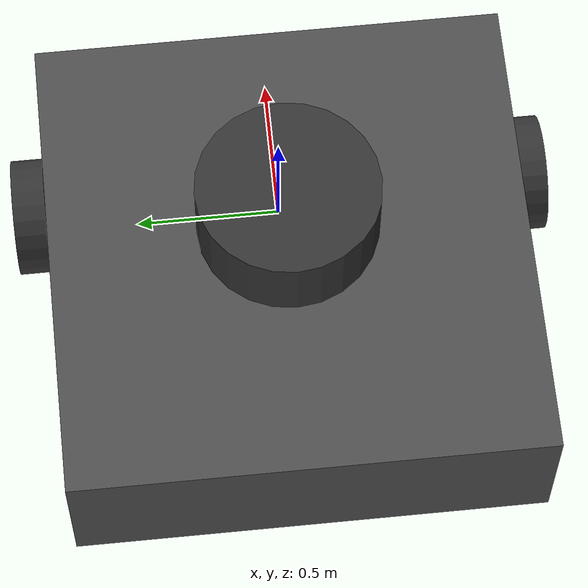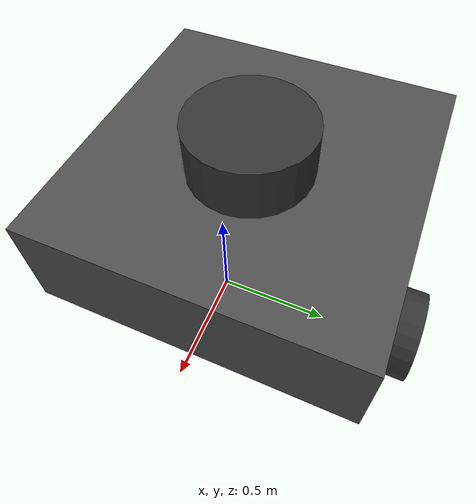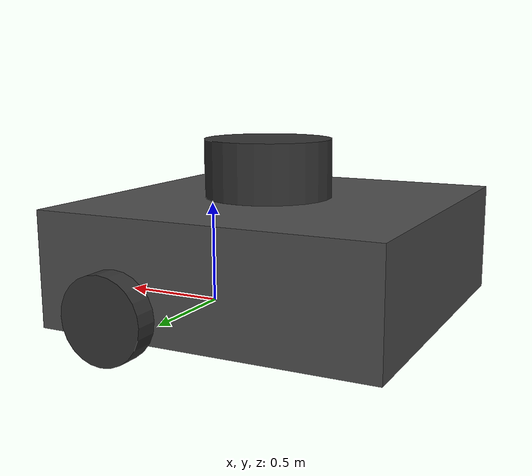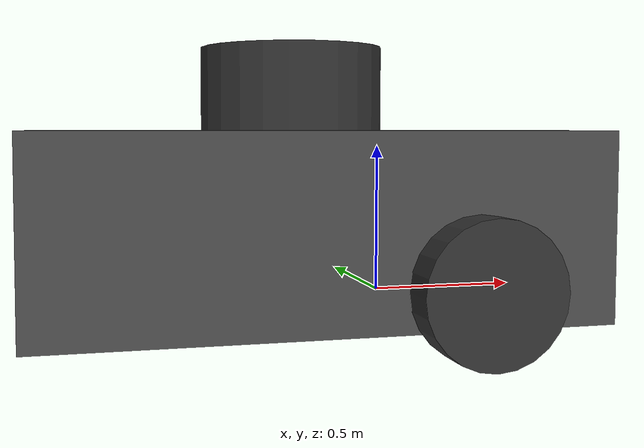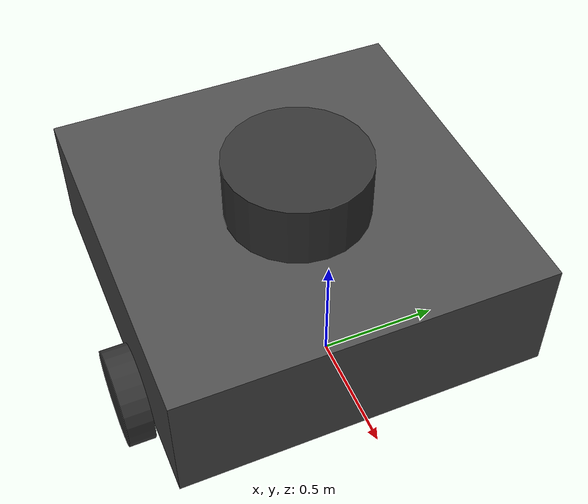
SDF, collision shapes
<sdf version="1.5">
  <model name="turtlebot3_waffle_pi">
  <pose>0.000000 0.000000 0.000000 0.0 0.0 0.0</pose>

    <link name="base_footprint" />

    <link name="base_link">

      <inertial>
        <pose>-0.384000 0.000000 0.288000 0 0 0</pose>
        <inertia>
          <ixx>4.2111447e-02</ixx>
          <ixy>0</ixy>
          <ixz>0</ixz>
          <iyy>4.2111447e-02</iyy>
          <iyz>0</iyz>
          <izz>7.5254874e-02</izz>
        </inertia>
        <mass>1.3729096e+00</mass>
      </inertial>

      <collision name="base_collision">
        <pose>-0.384000 0.000000 0.288000 0 0 0</pose>
        <geometry>
          <box>
            <size>1.590000 1.590000 0.534000</size>
          </box>
        </geometry>
      </collision>

      <visual name="base_visual">
        <pose>-0.384000 0.000000 0.000000 0 0 0</pose>
        <geometry>
          <mesh>
            <uri>model://turtlebot3_common/meshes/bases/waffle_pi_base.stl</uri>
            <scale>0.006000 0.006000 0.006000</scale>
          </mesh>
        </geometry>
        <material>
          <ambient>0.3 0.3 0.3 1.0</ambient>
          <diffuse>0.3 0.3 0.3 1.0</diffuse>
        </material>
      </visual>
    </link>

    <link name="imu_link">
      <sensor name="tb3_imu" type="imu">
        <always_on>true</always_on>
        <update_rate>200</update_rate>
        <imu>
          <angular_velocity>
            <x>
              <noise type="gaussian">
                <mean>0.0</mean>
                <stddev>2e-4</stddev>
              </noise>
            </x>
            <y>
              <noise type="gaussian">
                <mean>0.0</mean>
                <stddev>2e-4</stddev>
              </noise>
            </y>
            <z>
              <noise type="gaussian">
                <mean>0.0</mean>
                <stddev>2e-4</stddev>
              </noise>
            </z>
          </angular_velocity>
          <linear_acceleration>
            <x>
              <noise type="gaussian">
                <mean>0.0</mean>
                <stddev>1.7e-2</stddev>
              </noise>
            </x>
            <y>
              <noise type="gaussian">
                <mean>0.0</mean>
                <stddev>1.7e-2</stddev>
              </noise>
            </y>
            <z>
              <noise type="gaussian">
                <mean>0.0</mean>
                <stddev>1.7e-2</stddev>
              </noise>
            </z>
          </linear_acceleration>
        </imu>
        <plugin name="turtlebot3_imu" filename="libgazebo_ros_imu_sensor.so">
          <ros>

            <remapping>~/out:=imu</remapping>
          </ros>
        </plugin>
      </sensor>
    </link>

    <link name="base_scan">
      <inertial>
        <pose>-0.312000 0.000000 0.666000 0 0 0</pose>
        <inertia>
          <ixx>0.001</ixx>
          <ixy>0.000</ixy>
          <ixz>0.000</ixz>
          <iyy>0.001</iyy>
          <iyz>0.000</iyz>
          <izz>0.001</izz>
        </inertia>
        <mass>0.114</mass>
      </inertial>

      <collision name="lidar_sensor_collision">
        <pose>-0.312000 0.000000 0.666000 0 0 0</pose>
        <geometry>
          <cylinder>
            <radius>0.304800</radius>
            <length>0.330000</length>
          </cylinder>
        </geometry>
      </collision>

      <visual name="lidar_sensor_visual">
        <pose>-0.384000 0.000000 0.726000 0 0 0</pose>
        <geometry>
          <mesh>
            <uri>model://turtlebot3_common/meshes/sensors/lds.stl</uri>
            <scale>0.006000 0.006000 0.006000</scale>
          </mesh>
        </geometry>
        <material>
          <ambient>0.2 0.2 0.2 1.0</ambient>
          <diffuse>0.2 0.2 0.2 1.0</diffuse>
        </material>
      </visual>

      <sensor name="hls_lfcd_lds" type="ray">
        <always_on>true</always_on>
        <visualize>true</visualize>
        <pose>-0.384000 0.000000 0.726000 0 0 0</pose>
        <update_rate>5</update_rate>
        <ray>
          <scan>
            <horizontal>
              <samples>360</samples>
              <resolution>1.000000</resolution>
              <min_angle>0.000000</min_angle>
              <max_angle>6.280000</max_angle>
            </horizontal>
          </scan>
          <range>
            <min>0.120000</min>
            <max>3.5</max>
            <resolution>0.015000</resolution>
          </range>
          <noise>
            <type>gaussian</type>
            <mean>0.0</mean>
            <stddev>0.01</stddev>
          </noise>
        </ray>
        <plugin name="turtlebot3_laserscan" filename="libgazebo_ros_ray_sensor.so">
          <ros>

            <remapping>~/out:=scan</remapping>
          </ros>
          <output_type>sensor_msgs/LaserScan</output_type>
          <frame_name>base_scan</frame_name>
        </plugin>
      </sensor>
    </link>

    <link name="wheel_left_link">

      <inertial>
        <pose>0.000000 0.864000 0.138000 -1.57 0 0</pose>
        <inertia>
          <ixx>1.8158194e-03</ixx>
          <ixy>-9.3392e-12</ixy>
          <ixz>1.04909e-11</ixz>
          <iyy>3.2922126e-03</iyy>
          <iyz>5.75694e-11</iyz>
          <izz>1.8158194e-03</izz>
        </inertia>
        <mass>2.8498940e-02</mass>
      </inertial>

      <collision name="wheel_left_collision">
        <pose>0.000000 0.864000 0.138000 -1.57 0 0</pose>
        <geometry>
          <cylinder>
            <radius>0.198000</radius>
            <length>0.108000</length>
          </cylinder>
        </geometry>
        <surface>

          <friction>
            <ode>
              <mu>100000</mu>
              <mu2>100000</mu2>
              <fdir1>0 0 0</fdir1>
              <slip1>0.0</slip1>
              <slip2>0.0</slip2>
            </ode>
          </friction>
          <contact>
            <ode>
              <soft_cfm>0</soft_cfm>
              <soft_erp>0.2</soft_erp>
              <kp>1e+5</kp>
              <kd>1</kd>
              <max_vel>0.01</max_vel>
              <min_depth>0.001</min_depth>
            </ode>
          </contact>
        </surface>
      </collision>

      <visual name="wheel_left_visual">
        <pose>0.000000 0.864000 0.138000 0 0 0</pose>
        <geometry>
          <mesh>
            <uri>model://turtlebot3_common/meshes/wheels/right_tire.stl</uri>
            <scale>0.006000 0.006000 0.006000</scale>
          </mesh>
        </geometry>
        <material>
          <ambient>0.2 0.2 0.2 1.0</ambient>
          <diffuse>0.2 0.2 0.2 1.0</diffuse>
        </material>
      </visual>
    </link>

    <link name="wheel_right_link">

      <inertial>
        <pose>0.000000 -0.864000 0.138000 -1.57 0 0</pose>
        <inertia>
          <ixx>1.8158194e-03</ixx>
          <ixy>-9.3392e-12</ixy>
          <ixz>1.04909e-11</ixz>
          <iyy>3.2922126e-03</iyy>
          <iyz>5.75694e-11</iyz>
          <izz>1.8158194e-03</izz>
        </inertia>
        <mass>2.8498940e-02</mass>
      </inertial>

      <collision name="wheel_right_collision">
        <pose>0.000000 -0.864000 0.138000 -1.57 0 0</pose>
        <geometry>
          <cylinder>
            <radius>0.198000</radius>
            <length>0.108000</length>
          </cylinder>
        </geometry>
        <surface>

          <friction>
            <ode>
              <mu>100000</mu>
              <mu2>100000</mu2>
              <fdir1>0 0 0</fdir1>
              <slip1>0.0</slip1>
              <slip2>0.0</slip2>
            </ode>
          </friction>
          <contact>
            <ode>
              <soft_cfm>0</soft_cfm>
              <soft_erp>0.2</soft_erp>
              <kp>1e+5</kp>
              <kd>1</kd>
              <max_vel>0.01</max_vel>
              <min_depth>0.001</min_depth>
            </ode>
          </contact>
        </surface>
      </collision>

      <visual name="wheel_right_visual">
        <pose>0.000000 -0.864000 0.138000 0 0 0</pose>
        <geometry>
          <mesh>
            <uri>model://turtlebot3_common/meshes/wheels/left_tire.stl</uri>
            <scale>0.006000 0.006000 0.006000</scale>
          </mesh>
        </geometry>
        <material>
          <ambient>0.2 0.2 0.2 1.0</ambient>
          <diffuse>0.2 0.2 0.2 1.0</diffuse>
        </material>
      </visual>
    </link>

    <link name="caster_back_right_link">
      <pose>-1.062000 -0.384000 -0.024000 -1.57 0 0</pose>
      <inertial>
        <mass>0.001</mass>
        <inertia>
          <ixx>0.00001</ixx>
          <ixy>0.000</ixy>
          <ixz>0.000</ixz>
          <iyy>0.00001</iyy>
          <iyz>0.000</iyz>
          <izz>0.00001</izz>
        </inertia>
      </inertial>
      <collision name="collision">
        <geometry>
          <sphere>
            <radius>0.030000</radius>
          </sphere>
        </geometry>
        <surface>
          <contact>
            <ode>
              <soft_cfm>0</soft_cfm>
              <soft_erp>0.2</soft_erp>
              <kp>1e+5</kp>
              <kd>1</kd>
              <max_vel>0.01</max_vel>
              <min_depth>0.001</min_depth>
            </ode>
          </contact>
        </surface>
      </collision>
    </link>

    <link name="caster_back_left_link">
      <pose>-1.062000 0.384000 -0.024000 -1.57 0 0</pose>
      <inertial>
        <mass>0.001</mass>
        <inertia>
          <ixx>0.00001</ixx>
          <ixy>0.000</ixy>
          <ixz>0.000</ixz>
          <iyy>0.00001</iyy>
          <iyz>0.000</iyz>
          <izz>0.00001</izz>
        </inertia>
      </inertial>
      <collision name="collision">
        <geometry>
          <sphere>
            <radius>0.030000</radius>
          </sphere>
        </geometry>
        <surface>
          <contact>
            <ode>
              <soft_cfm>0</soft_cfm>
              <soft_erp>0.2</soft_erp>
              <kp>1e+5</kp>
              <kd>1</kd>
              <max_vel>0.01</max_vel>
              <min_depth>0.001</min_depth>
            </ode>
          </contact>
        </surface>
      </collision>
    </link>

    <link name="camera_link" />

    <link name="camera_rgb_optical_frame">
      <inertial>
        <pose>0.456000 0.000000 0.558000 0 0 0</pose>
        <inertia>
          <ixx>0.001</ixx>
          <ixy>0.000</ixy>
          <ixz>0.000</ixz>
          <iyy>0.001</iyy>
          <iyz>0.000</iyz>
          <izz>0.001</izz>
        </inertia>
        <mass>0.035</mass>
      </inertial>

      <pose>0.456000 0.000000 0.558000 0 0 0</pose>
      <sensor name="camera" type="camera">
        <always_on>true</always_on>
        <visualize>true</visualize>
        <update_rate>30</update_rate>
        <camera name="picam">
          <horizontal_fov>1.085595</horizontal_fov>
          <image>
              <width>640</width>
              <height>480</height>
              <format>R8G8B8</format>
          </image>
          <clip>
              <near>0.03</near>
              <far>100</far>
          </clip>
          <noise>
            <type>gaussian</type>

            <mean>0.0</mean>
            <stddev>0.007</stddev>
          </noise>
        </camera>
          <plugin name="camera_driver" filename="libgazebo_ros_camera.so">
            <ros>

            </ros>

          </plugin>
      </sensor>
    </link>

    <joint name="base_joint" type="fixed">
      <parent>base_footprint</parent>
      <child>base_link</child>
      <pose>0.000000 0.000000 0.060000 0 0 0</pose>
    </joint>

    <joint name="wheel_left_joint" type="revolute">
      <parent>base_link</parent>
      <child>wheel_left_link</child>
      <pose>0.000000 0.864000 0.138000 -1.57 0 0</pose>
      <axis>
        <xyz>0 0 1</xyz>
      </axis>
    </joint>

    <joint name="wheel_right_joint" type="revolute">
      <parent>base_link</parent>
      <child>wheel_right_link</child>
      <pose>0.000000 -0.864000 0.138000 -1.57 0 0</pose>
      <axis>
        <xyz>0 0 1</xyz>
      </axis>
    </joint>

    <joint name="caster_back_right_joint" type="ball">
      <parent>base_link</parent>
      <child>caster_back_right_link</child>
    </joint>

    <joint name="caster_back_left_joint" type="ball">
      <parent>base_link</parent>
      <child>caster_back_left_link</child>
    </joint>

    <joint name="imu_joint" type="fixed">
      <parent>base_link</parent>
      <child>imu_link</child>
      <pose>-0.192000 0.000000 0.408000 0 0 0</pose>
      <axis>
        <xyz>0 0 1</xyz>
      </axis>
    </joint>

    <joint name="lidar_joint" type="fixed">
      <parent>base_link</parent>
      <child>base_scan</child>
      <pose>-0.384000 0.000000 0.726000 0 0 0</pose>
      <axis>
        <xyz>0 0 1</xyz>
      </axis>
    </joint>

    <joint name="camera_joint" type="fixed">
      <parent>base_link</parent>
      <child>camera_link</child>
      <pose>0.438000 -0.066000 0.504000 0 0 0</pose>
      <axis>
        <xyz>0 0 1</xyz>
      </axis>
    </joint>

    <joint name="camera_rgb_joint" type="fixed">
      <parent>camera_link</parent>
      <child>camera_rgb_optical_frame</child>
      <pose>0.018000 0.066000 0.054000 0 0 0</pose>
      <axis>
        <xyz>0 0 1</xyz>
      </axis>
    </joint>

    <plugin name="turtlebot3_diff_drive" filename="libgazebo_ros_diff_drive.so">

      <ros>

      </ros>

      <update_rate>30</update_rate>

      <left_joint>wheel_left_joint</left_joint>
      <right_joint>wheel_right_joint</right_joint>

      <wheel_separation>0.287</wheel_separation>
      <wheel_diameter>0.066</wheel_diameter>

      <max_wheel_torque>20</max_wheel_torque>
      <max_wheel_acceleration>1.0</max_wheel_acceleration>

      <command_topic>cmd_vel</command_topic>

      <publish_odom>true</publish_odom>
      <publish_odom_tf>true</publish_odom_tf>
      <publish_wheel_tf>false</publish_wheel_tf>

      <odometry_topic>odom</odometry_topic>
      <odometry_frame>odom</odometry_frame>
      <robot_base_frame>base_footprint</robot_base_frame>

    </plugin>

    <plugin name="turtlebot3_joint_state" filename="libgazebo_ros_joint_state_publisher.so">
      <ros>

        <remapping>~/out:=joint_states</remapping>
      </ros>
      <update_rate>30</update_rate>
      <joint_name>wheel_left_joint</joint_name>
      <joint_name>wheel_right_joint</joint_name>
    </plugin>

  </model>
</sdf>
